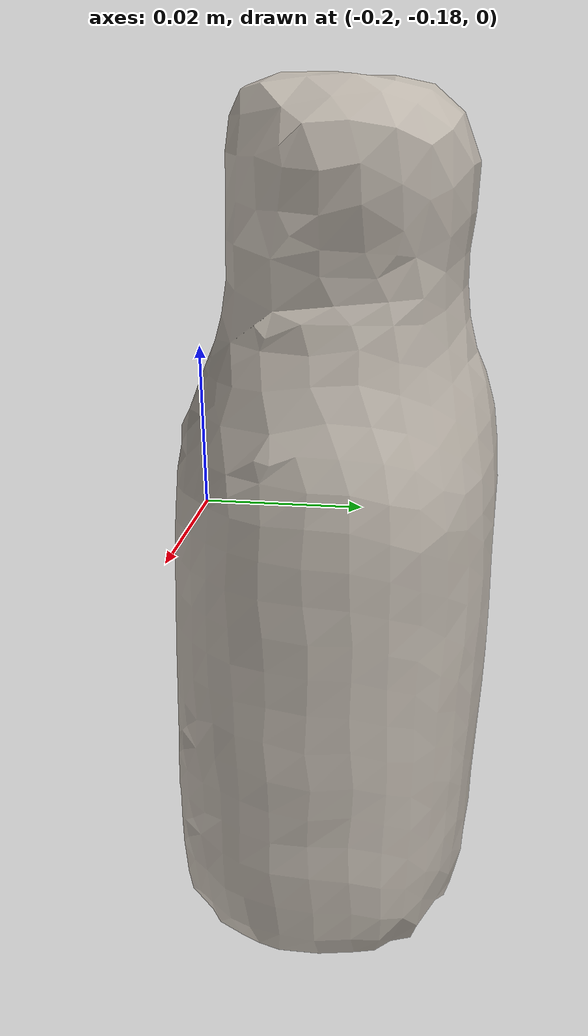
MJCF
<mujoco model="bottle_Weston_No_33_Signature_Sausage_Tonic_12_fl_oz_M">
  <asset>
    <mesh file="meshes/bottle_Weston_No_33_Signature_Sausage_Tonic_12_fl_oz_M.stl" name="bottle_mesh" scale="0.46384728542449105 0.46384728542449105 0.46384728542449105"/>
    <texture type="cube" file="/home/jbw/Projects/gc-reorientation/bin_env/assets/textures/ceramic.png" rgb1="1 1 1" name="tex-bottle"/>
    <material name="bottle" reflectance="0.5" texrepeat="3 3" texture="tex-bottle"/>
  </asset>
  <worldbody>
    <body>
      <body name="object">
        <geom pos="-0.18690914638627143 -0.16191245086309164 -0.004765985394265463" quat="1 0 0 0" mesh="bottle_mesh" type="mesh" solref="0.02 1" density="0" friction="1.0 1.0 1.0" material="bottle" group="0" condim="4"/>
      </body>
      <site rgba="0 0 0 0" size="0.005" pos="0 0 -0.05" name="bottom_site"/>
      <site rgba="0 0 0 0" size="0.005" pos="0 0 0.03" name="top_site"/>
      <site rgba="0 0 0 0" size="0.005" pos="0.02 0.015 0" name="horizontal_radius_site"/>
    </body>
  </worldbody>
</mujoco>
